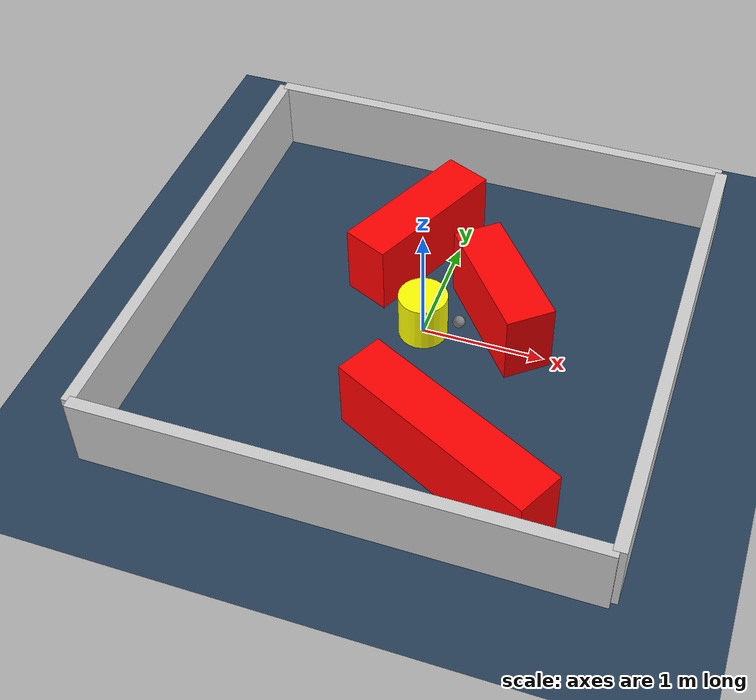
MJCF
<?xml version="1.0" ?>
<mujoco model="generated_environment">
  <option timestep="0.01" integrator="RK4" cone="elliptic"/>
  <default>
    <geom density="1"/>
  </default>
  <asset>
    <texture builtin="gradient" height="3072" rgb1="0.3 0.5 0.7" rgb2="0 0 0" type="skybox" width="512"/>
    <texture builtin="checker" height="300" mark="edge" markrgb="0.8 0.8 0.8" name="groundplane" rgb1="0.2 0.3 0.4" rgb2="0.1 0.2 0.3" type="2d" width="300"/>
    <material name="groundplane" reflectance="0.2" texrepeat="5 5" texture="groundplane" texuniform="true"/>
    <material name="robot" rgba="0.0 1.0 0.0 1"/>
  </asset>
  <worldbody>
    <light dir="0 0 -1" directional="true" pos="0 0 1.5"/>
    <geom condim="4" friction="1.0 0.005 0.001" material="groundplane" name="floor" size="0 0 0.05" type="plane"/>
    <body name="walls">
      <geom name="wall_1" condim="4" pos="-2.0 0.0 0.3" rgba="0.800000011920929 0.800000011920929 0.800000011920929 1.0" size="0.05 2.0 0.3" type="box"/>
      <geom name="wall_2" condim="4" pos="2.0 0.0 0.3" rgba="0.800000011920929 0.800000011920929 0.800000011920929 1.0" size="0.05 2.0 0.3" type="box"/>
      <geom name="wall_3" condim="4" pos="0.0 -2.0 0.3" rgba="0.800000011920929 0.800000011920929 0.800000011920929 1.0" size="2.0 0.05 0.3" type="box"/>
      <geom name="wall_4" condim="4" pos="0.0 2.0 0.3" rgba="0.800000011920929 0.800000011920929 0.800000011920929 1.0" size="2.0 0.05 0.3" type="box"/>
    </body>
    <body name="robot">
      <joint name="joint_x" type="slide" pos="0 0 0" axis="1 0 0"/>
      <joint name="joint_y" type="slide" pos="0 0 0" axis="0 1 0"/>
      <geom name="robot" type="sphere" pos="0.3 0.0 0.2" size="0.05" mass="5." friction="1.0 0.005 0.0001" condim="4" rgba="0.5 0.5 0.5 1.0"/>
      <site name="sensor_ball"/>
    </body>
    <body name="obstacle_movable_1">
      <geom name="obstacle_movable_1" condim="4" pos="0.0 0.0 0.2" euler="0 0 0.0" friction="1.0 0.005 0.001" rgba="1.0 1.0 0.0 1.0" size="0.2 0.2 0.0" type="cylinder" mass="0.1"/>
      <joint type="free"/>
    </body>
    <body name="obstacle_2_static">
      <geom name="obstacle_2_static" condim="4" pos="0.6051172136906595 -1.311787703481924 0.3" euler="0 0 333.2325803322139" friction="1.0 0.005 0.001" rgba="1 0 0 1" size="0.8992389447106977 0.2 0.3" type="box"/>
    </body>
    <body name="obstacle_3_static">
      <geom name="obstacle_3_static" condim="4" pos="0.5761767263205342 0.26080665990665053 0.3" euler="0 0 129.0953544817595" friction="1.0 0.005 0.001" rgba="1 0 0 1" size="0.5414715174849327 0.2 0.3" type="box"/>
    </body>
    <body name="obstacle_4_static">
      <geom name="obstacle_4_static" condim="4" pos="-0.3103874412186809 0.7967699259851313 0.3" euler="0 0 65.94561862809883" friction="1.0 0.005 0.001" rgba="1 0 0 1" size="0.6308715312748279 0.2 0.3" type="box"/>
    </body>
  </worldbody>
  <actuator>
    <motor name="actuator_x" joint="joint_x" gear="1" ctrlrange="-1 1"/>
    <motor name="actuator_y" joint="joint_y" gear="1" ctrlrange="-1 1"/>
  </actuator>
</mujoco>
